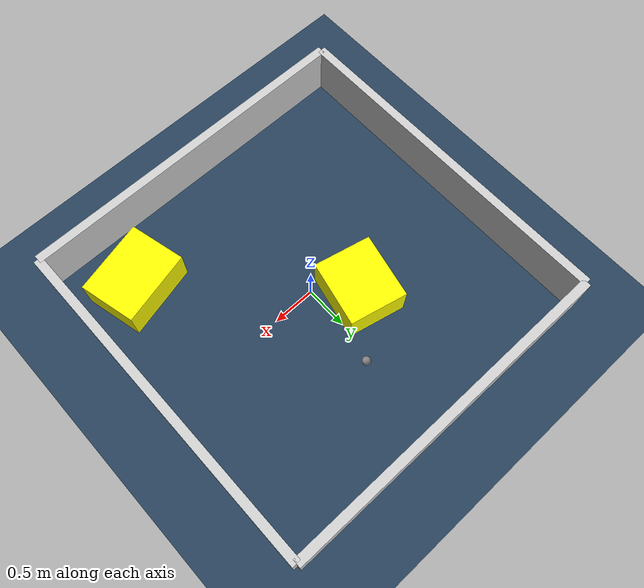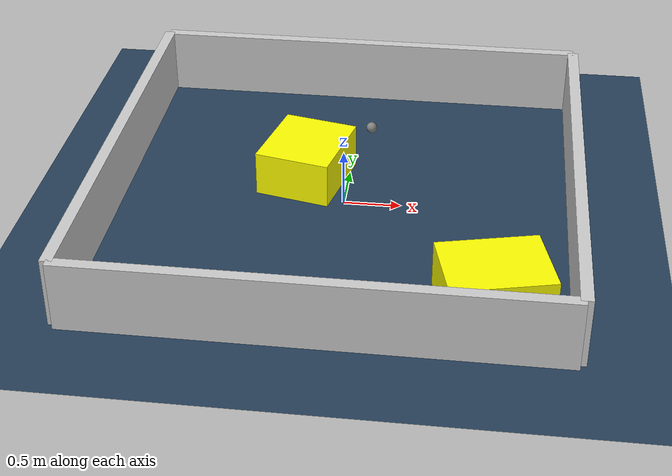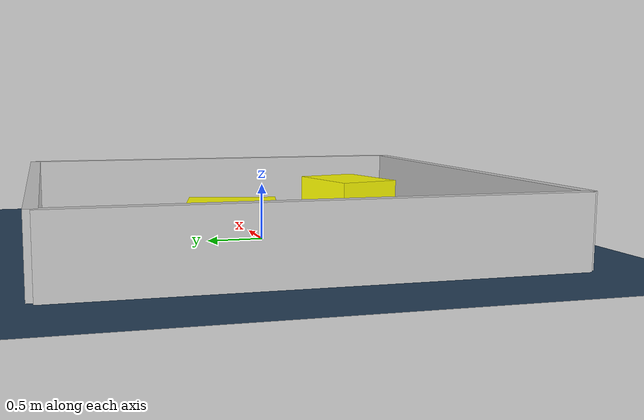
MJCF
<?xml version="1.0" ?>
<mujoco model="generated_environment">
  <option timestep="0.01" integrator="RK4" cone="elliptic"/>
  <default>
    <geom density="1"/>
  </default>
  <asset>
    <texture builtin="gradient" height="3072" rgb1="0.3 0.5 0.7" rgb2="0 0 0" type="skybox" width="512"/>
    <texture builtin="checker" height="300" mark="edge" markrgb="0.8 0.8 0.8" name="groundplane" rgb1="0.2 0.3 0.4" rgb2="0.1 0.2 0.3" type="2d" width="300"/>
    <material name="groundplane" reflectance="0.2" texrepeat="5 5" texture="groundplane" texuniform="true"/>
    <material name="robot" rgba="0.0 1.0 0.0 1"/>
  </asset>
  <worldbody>
    <light dir="0 0 -1" directional="true" pos="0 0 1.5"/>
    <geom condim="4" friction="1.0 0.005 0.001" material="groundplane" name="floor" size="0 0 0.05" type="plane"/>
    <body name="walls">
      <geom name="wall_1" condim="4" pos="-2.0 0.0 0.3" rgba="0.800000011920929 0.800000011920929 0.800000011920929 1.0" size="0.05 2.0 0.3" type="box"/>
      <geom name="wall_2" condim="4" pos="2.0 0.0 0.3" rgba="0.800000011920929 0.800000011920929 0.800000011920929 1.0" size="0.05 2.0 0.3" type="box"/>
      <geom name="wall_3" condim="4" pos="0.0 -2.0 0.3" rgba="0.800000011920929 0.800000011920929 0.800000011920929 1.0" size="2.0 0.05 0.3" type="box"/>
      <geom name="wall_4" condim="4" pos="0.0 2.0 0.3" rgba="0.800000011920929 0.800000011920929 0.800000011920929 1.0" size="2.0 0.05 0.3" type="box"/>
    </body>
    <body name="robot">
      <joint name="joint_x" type="slide" pos="0 0 0" axis="1 0 0"/>
      <joint name="joint_y" type="slide" pos="0 0 0" axis="0 1 0"/>
      <geom name="robot" type="sphere" pos="0.141128093078851 1.0099050563824918 0.2" size="0.05" mass="5." friction="1.0 0.005 0.0001" condim="4"/>
      <site name="sensor_ball"/>
    </body>
    <body name="obstacle_1_movable">
      <geom name="obstacle_1_movable" condim="4" pos="1.3427205645948126 -1.324368247006016 0.2" euler="0 0 13.793044290595944" friction="1.0 0.005 0.001" rgba="1 1 0 1" size="0.42885048904939843 0.33048809554400815 0.2" type="box" mass="0.1"/>
      <joint type="free"/>
    </body>
    <body name="obstacle_2_movable">
      <geom name="obstacle_2_movable" condim="4" pos="-0.3785947710075126 0.36073520253414726 0.2" euler="0 0 257.168039399032" friction="1.0 0.005 0.001" rgba="1 1 0 1" size="0.38289977774716444 0.33546401351026567 0.2" type="box" mass="0.1"/>
      <joint type="free"/>
    </body>
  </worldbody>
  <actuator>
    <motor name="actuator_x" joint="joint_x" gear="1" ctrlrange="-1 1"/>
    <motor name="actuator_y" joint="joint_y" gear="1" ctrlrange="-1 1"/>
  </actuator>
</mujoco>
